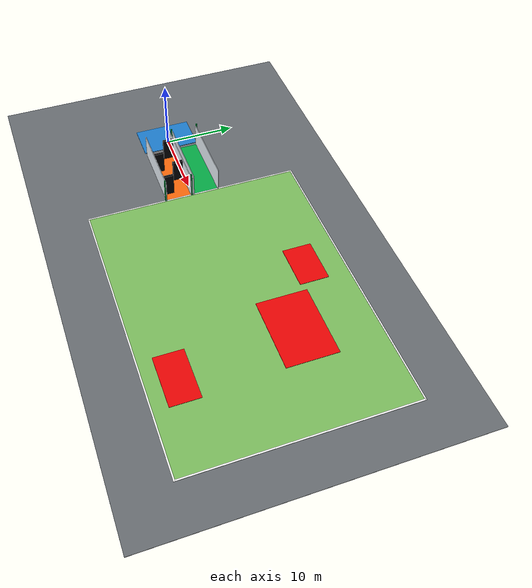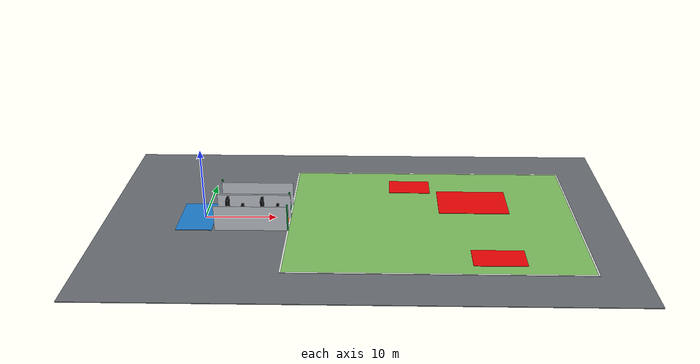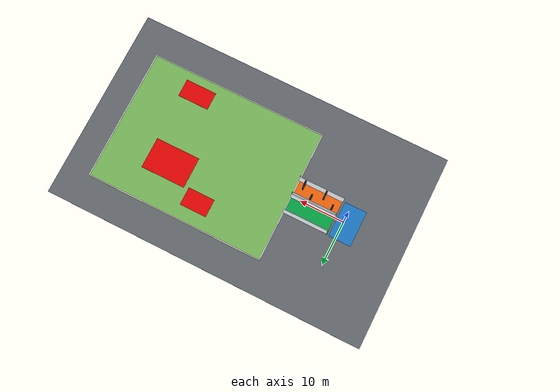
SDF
<sdf version="1.9">
 <world name="mission2">
  <physics name="1ms" type="ignored">
   <max_step_size>0.001</max_step_size>
   <real_time_factor>1.0</real_time_factor>
  </physics>
  <plugin filename="gz-sim-physics-system" name="gz::sim::systems::Physics"/>
  <plugin filename="gz-sim-user-commands-system" name="gz::sim::systems::UserCommands"/>
  <plugin filename="gz-sim-scene-broadcaster-system" name="gz::sim::systems::SceneBroadcaster"/>
  <plugin filename="gz-sim-sensors-system" name="gz::sim::systems::Sensors">
   <render_engine>ogre2</render_engine>
  </plugin>
  <plugin filename="gz-sim-air-pressure-system" name="gz::sim::systems::AirPressure"/>
  <plugin filename="gz-sim-air-speed-system" name="gz::sim::systems::AirSpeed"/>
  <plugin filename="gz-sim-altimeter-system" name="gz::sim::systems::Altimeter"/>
  <plugin filename="gz-sim-imu-system" name="gz::sim::systems::Imu"/>
  <plugin filename="gz-sim-magnetometer-system" name="gz::sim::systems::Magnetometer"/>
  <plugin filename="gz-sim-navsat-system" name="gz::sim::systems::NavSat"/>
  <scene>
   <ambient>0.72 0.72 0.72 1</ambient>
   <background>0.72 0.82 0.93 1</background>
   <shadows>true</shadows>
   <grid>false</grid>
  </scene>
  <spherical_coordinates>
   <surface_model>EARTH_WGS84</surface_model>
   <world_frame_orientation>ENU</world_frame_orientation>
   <latitude_deg>12.9716</latitude_deg>
   <longitude_deg>79.1594</longitude_deg>
   <elevation>0</elevation>
   <heading_deg>0</heading_deg>
  </spherical_coordinates>
  <light name="sun" type="directional">
   <pose>0 0 30 0 0 0</pose>
   <diffuse>0.95 0.92 0.86 1</diffuse>
   <specular>0.25 0.25 0.25 1</specular>
   <attenuation>
    <range>1000</range>
    <constant>0.9</constant>
    <linear>0.01</linear>
    <quadratic>0.001</quadratic>
   </attenuation>
   <direction>-0.4 0.2 -0.9</direction>
  </light>
  <model name="site_ground">
   <static>true</static>
   <link name="ground">
    <collision name="collision">
     <geometry><box><size>72 44 0.10</size></box></geometry>
     <pose>22 0 -0.05 0 0 0</pose>
    </collision>
    <visual name="visual">
     <geometry><box><size>72 44 0.10</size></box></geometry>
     <pose>22 0 -0.05 0 0 0</pose>
     <material><ambient>0.36 0.38 0.40 1</ambient><diffuse>0.42 0.44 0.46 1</diffuse></material>
    </visual>
   </link>
  </model>
  <model name="takeoff_landing_zone">
   <static>true</static>
   <link name="pad">
    <collision name="collision"><geometry><box><size>5 8 0.08</size></box></geometry></collision>
    <visual name="visual">
     <geometry><box><size>5 8 0.08</size></box></geometry>
     <material><ambient>0.10 0.42 0.72 1</ambient><diffuse>0.12 0.50 0.82 1</diffuse></material>
    </visual>
   </link>
   <pose>-1 0 0.04 0 0 0</pose>
  </model>
  <model name="start_qr_target_a">
   <static>true</static>
   <link name="marker">@QR_START_VISUALS@</link>
   <pose>-1 2.0 0.09 0 0 0</pose>
  </model>
  <model name="forward_corridor_green">
   <static>true</static>
   <link name="floor">
    <collision name="collision"><geometry><box><size>10 3.5 0.08</size></box></geometry></collision>
    <visual name="visual">
     <geometry><box><size>10 3.5 0.08</size></box></geometry>
     <material><ambient>0.02 0.58 0.23 1</ambient><diffuse>0.02 0.68 0.28 1</diffuse></material>
    </visual>
   </link>
   <pose>7 2.0 0.04 0 0 0</pose>
  </model>
  <model name="return_corridor_orange">
   <static>true</static>
   <link name="floor">
    <collision name="collision"><geometry><box><size>10 3.5 0.08</size></box></geometry></collision>
    <visual name="visual">
     <geometry><box><size>10 3.5 0.08</size></box></geometry>
     <material><ambient>0.92 0.35 0.04 1</ambient><diffuse>1.0 0.42 0.05 1</diffuse></material>
    </visual>
   </link>
   <pose>7 -2.0 0.04 0 0 0</pose>
  </model>
  <model name="corridor_walls">
   <static>true</static>
   <link name="walls">
    <collision name="forward_outer_collision">
     <pose>0 3.80 1.8 0 0 0</pose>
     <geometry><box><size>10.2 0.10 3.6</size></box></geometry>
    </collision>
    <visual name="forward_outer">
     <pose>0 3.80 1.8 0 0 0</pose>
     <geometry><box><size>10.2 0.10 3.6</size></box></geometry>
     <material><ambient>0.82 0.86 0.90 1</ambient><diffuse>0.90 0.93 0.96 1</diffuse></material>
    </visual>
    <collision name="forward_inner_collision">
     <pose>0 0.20 1.8 0 0 0</pose>
     <geometry><box><size>10.2 0.10 3.6</size></box></geometry>
    </collision>
    <visual name="forward_inner">
     <pose>0 0.20 1.8 0 0 0</pose>
     <geometry><box><size>10.2 0.10 3.6</size></box></geometry>
     <material><ambient>0.82 0.86 0.90 1</ambient><diffuse>0.90 0.93 0.96 1</diffuse></material>
    </visual>
    <collision name="return_inner_collision">
     <pose>0 -0.20 1.8 0 0 0</pose>
     <geometry><box><size>10.2 0.10 3.6</size></box></geometry>
    </collision>
    <visual name="return_inner">
     <pose>0 -0.20 1.8 0 0 0</pose>
     <geometry><box><size>10.2 0.10 3.6</size></box></geometry>
     <material><ambient>0.82 0.86 0.90 1</ambient><diffuse>0.90 0.93 0.96 1</diffuse></material>
    </visual>
    <collision name="return_outer_collision">
     <pose>0 -3.80 1.8 0 0 0</pose>
     <geometry><box><size>10.2 0.10 3.6</size></box></geometry>
    </collision>
    <visual name="return_outer">
     <pose>0 -3.80 1.8 0 0 0</pose>
     <geometry><box><size>10.2 0.10 3.6</size></box></geometry>
     <material><ambient>0.82 0.86 0.90 1</ambient><diffuse>0.90 0.93 0.96 1</diffuse></material>
    </visual>
   </link>
   <pose>7 0 0 0 0 0</pose>
  </model>
  <model name="return_static_obstacles">
   <static>true</static>
   <link name="obstacles">
    <collision name="o1c">
     <pose>-3.6 -0.95 1.7 0 0 0</pose>
     <geometry><box><size>0.35 1.45 3.4</size></box></geometry>
    </collision>
    <visual name="o1">
     <pose>-3.6 -0.95 1.7 0 0 0</pose>
     <geometry><box><size>0.35 1.45 3.4</size></box></geometry>
     <material><ambient>0.015 0.015 0.018 1</ambient><diffuse>0.025 0.025 0.030 1</diffuse></material>
    </visual>
    <collision name="o2c">
     <pose>-1.2 -3.05 1.7 0 0 0</pose>
     <geometry><box><size>0.35 1.45 3.4</size></box></geometry>
    </collision>
    <visual name="o2">
     <pose>-1.2 -3.05 1.7 0 0 0</pose>
     <geometry><box><size>0.35 1.45 3.4</size></box></geometry>
     <material><ambient>0.015 0.015 0.018 1</ambient><diffuse>0.025 0.025 0.030 1</diffuse></material>
    </visual>
    <collision name="o3c">
     <pose>1.2 -0.95 1.7 0 0 0</pose>
     <geometry><box><size>0.35 1.45 3.4</size></box></geometry>
    </collision>
    <visual name="o3">
     <pose>1.2 -0.95 1.7 0 0 0</pose>
     <geometry><box><size>0.35 1.45 3.4</size></box></geometry>
     <material><ambient>0.015 0.015 0.018 1</ambient><diffuse>0.025 0.025 0.030 1</diffuse></material>
    </visual>
    <collision name="o4c">
     <pose>3.6 -3.05 1.7 0 0 0</pose>
     <geometry><box><size>0.35 1.45 3.4</size></box></geometry>
    </collision>
    <visual name="o4">
     <pose>3.6 -3.05 1.7 0 0 0</pose>
     <geometry><box><size>0.35 1.45 3.4</size></box></geometry>
     <material><ambient>0.015 0.015 0.018 1</ambient><diffuse>0.025 0.025 0.030 1</diffuse></material>
    </visual>
   </link>
   <pose>7 0 0 0 0 0</pose>
  </model>
  <model name="forward_aerothon_banner">
   <static>true</static>
   <link name="gate">
    <collision name="left_post_collision">
     <pose>0 -1.92 2 0 0 0</pose>
     <geometry><box><size>0.18 0.18 4</size></box></geometry>
    </collision>
    <collision name="right_post_collision">
     <pose>0 1.92 2 0 0 0</pose>
     <geometry><box><size>0.18 0.18 4</size></box></geometry>
    </collision>
    <visual name="left_post">
     <pose>0 -1.92 2 0 0 0</pose>
     <geometry><box><size>0.18 0.18 4</size></box></geometry>
     <material><ambient>0.01 0.48 0.18 1</ambient><diffuse>0.01 0.62 0.24 1</diffuse></material>
    </visual>
    <visual name="right_post">
     <pose>0 1.92 2 0 0 0</pose>
     <geometry><box><size>0.18 0.18 4</size></box></geometry>
     <material><ambient>0.01 0.48 0.18 1</ambient><diffuse>0.01 0.62 0.24 1</diffuse></material>
    </visual>
   </link>
   <pose>2 2.0 0 0 0 0</pose>
  </model>
  <model name="return_aerothon_banner">
   <static>true</static>
   <link name="gate">
    <collision name="left_post_collision">
     <pose>0 -1.92 2 0 0 0</pose>
     <geometry><box><size>0.18 0.18 4</size></box></geometry>
    </collision>
    <collision name="right_post_collision">
     <pose>0 1.92 2 0 0 0</pose>
     <geometry><box><size>0.18 0.18 4</size></box></geometry>
    </collision>
    <visual name="left_post">
     <pose>0 -1.92 2 0 0 0</pose>
     <geometry><box><size>0.18 0.18 4</size></box></geometry>
     <material><ambient>0.01 0.48 0.18 1</ambient><diffuse>0.01 0.62 0.24 1</diffuse></material>
    </visual>
    <visual name="right_post">
     <pose>0 1.92 2 0 0 0</pose>
     <geometry><box><size>0.18 0.18 4</size></box></geometry>
     <material><ambient>0.01 0.48 0.18 1</ambient><diffuse>0.01 0.62 0.24 1</diffuse></material>
    </visual>
   </link>
   <pose>12 -2.0 0 0 0 0</pose>
  </model>
  <model name="delivery_zone_40x30">
   <static>true</static>
   <link name="field">
    <collision name="collision"><geometry><box><size>40 30 0.08</size></box></geometry></collision>
    <visual name="visual">
     <geometry><box><size>40 30 0.08</size></box></geometry>
     <material><ambient>0.42 0.67 0.31 1</ambient><diffuse>0.50 0.76 0.38 1</diffuse></material>
    </visual>
   </link>
   <pose>32 0 0.04 0 0 0</pose>
  </model>
  <model name="delivery_geofence_boundary">
   <static>true</static>
   <link name="lines">
    <visual name="north">
     <pose>0 15 0.07 0 0 0</pose>
     <geometry><box><size>40.2 0.20 0.06</size></box></geometry>
     <material><ambient>1 1 1 1</ambient><diffuse>1 1 1 1</diffuse></material>
    </visual>
    <visual name="south">
     <pose>0 -15 0.07 0 0 0</pose>
     <geometry><box><size>40.2 0.20 0.06</size></box></geometry>
     <material><ambient>1 1 1 1</ambient><diffuse>1 1 1 1</diffuse></material>
    </visual>
    <visual name="west">
     <pose>-20 0 0.07 0 0 0</pose>
     <geometry><box><size>0.20 30.2 0.06</size></box></geometry>
     <material><ambient>1 1 1 1</ambient><diffuse>1 1 1 1</diffuse></material>
    </visual>
    <visual name="east">
     <pose>20 0 0.07 0 0 0</pose>
     <geometry><box><size>0.20 30.2 0.06</size></box></geometry>
     <material><ambient>1 1 1 1</ambient><diffuse>1 1 1 1</diffuse></material>
    </visual>
   </link>
   <pose>32 0 0 0 0 0</pose>
  </model>
  <model name="delivery_qr_target_a">
   <static>true</static>
   <link name="marker">@QR_TARGET_A_VISUALS@</link>
   <pose>21 10 0.10 0 0 0</pose>
  </model>
  <model name="delivery_qr_target_b">
   <static>true</static>
   <link name="marker">@QR_TARGET_B_VISUALS@</link>
   <pose>47 10 0.10 0 0 0</pose>
  </model>
  <model name="delivery_qr_target_c">
   <static>true</static>
   <link name="marker">@QR_TARGET_C_VISUALS@</link>
   <pose>23 1 0.10 0 0 0</pose>
  </model>
  <model name="delivery_qr_target_d">
   <static>true</static>
   <link name="marker">@QR_TARGET_D_VISUALS@</link>
   <pose>33 -10 0.10 0 0 0</pose>
  </model>
  <model name="delivery_qr_target_e">
   <static>true</static>
   <link name="marker">@QR_TARGET_E_VISUALS@</link>
   <pose>45 -6 0.10 0 0 0</pose>
  </model>
  <model name="restricted_red_zone_main">
   <static>true</static>
   <link name="zone">
    <collision name="collision"><geometry><box><size>10 7 0.10</size></box></geometry></collision>
    <visual name="base">
     <geometry><box><size>10 7 0.10</size></box></geometry>
     <material><ambient>0.78 0.01 0.01 1</ambient><diffuse>0.95 0.02 0.02 1</diffuse></material>
    </visual>
   </link>
   <pose>38 5 0.10 0 0 0</pose>
  </model>
  <model name="restricted_red_zone_northwest">
   <static>true</static>
   <link name="zone">
    <collision name="collision"><geometry><box><size>6 4 0.10</size></box></geometry></collision>
    <visual name="base">
     <geometry><box><size>6 4 0.10</size></box></geometry>
     <material><ambient>0.78 0.01 0.01 1</ambient><diffuse>0.95 0.02 0.02 1</diffuse></material>
    </visual>
   </link>
   <pose>29 10 0.10 0 0 0</pose>
  </model>
  <model name="restricted_red_zone_south">
   <static>true</static>
   <link name="zone">
    <collision name="collision"><geometry><box><size>7 4 0.10</size></box></geometry></collision>
    <visual name="base">
     <geometry><box><size>7 4 0.10</size></box></geometry>
     <material><ambient>0.78 0.01 0.01 1</ambient><diffuse>0.95 0.02 0.02 1</diffuse></material>
    </visual>
   </link>
   <pose>40 -11 0.10 0 0 0</pose>
  </model>
 </world>
</sdf>
